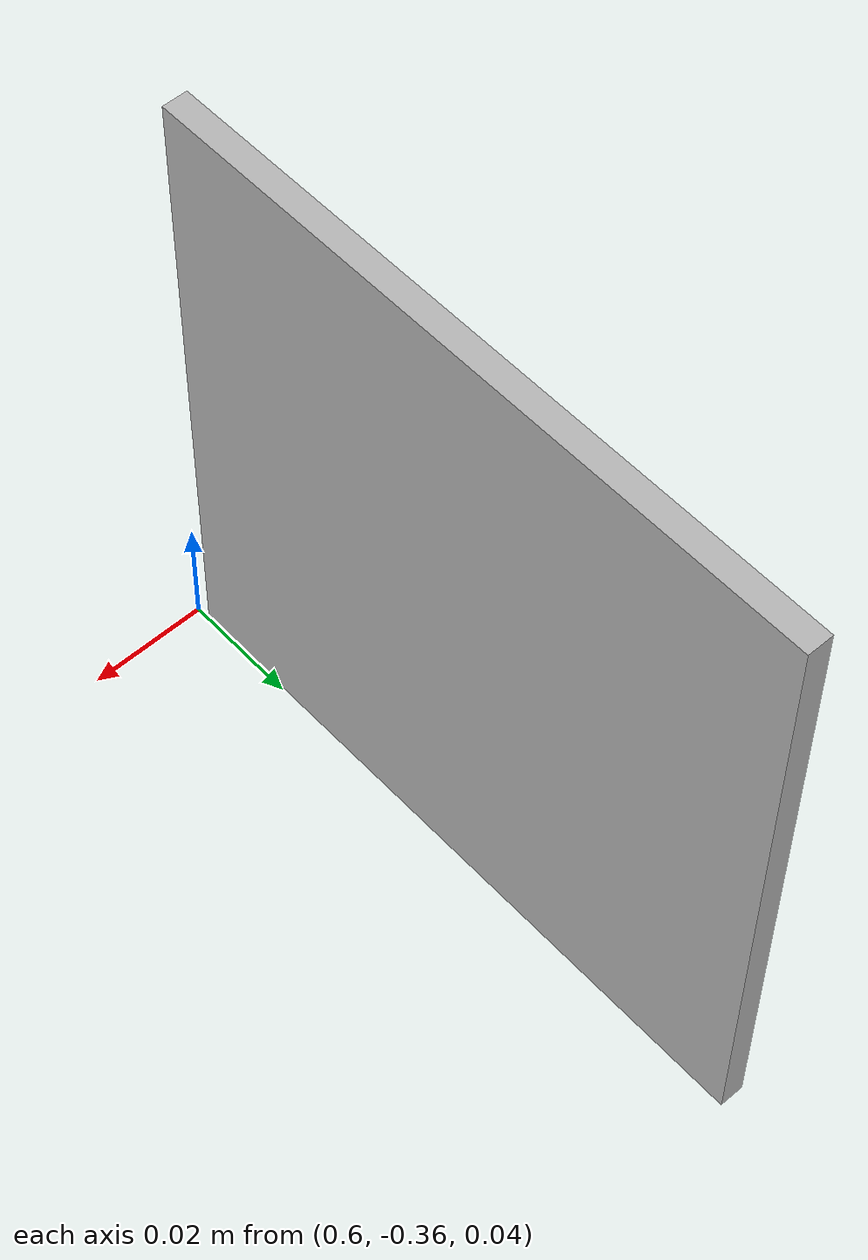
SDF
<?xml version='1.0'?>
<sdf version="1.6">
<model name="marker002">
  <pose>0.6 -0.3 0.1 0 1.575 0</pose>
    <link name="link">
      <visual name="visual">
        <geometry>
          <box>
            <size>0.11 0.11 0.004</size>
          </box>
        </geometry>
        <material>
          <script>
            <uri>model://marker002/materials/marker002.material</uri>
            <name>marker002</name>
          </script>
        </material>
      </visual>
    </link>
  </model>
</sdf>
